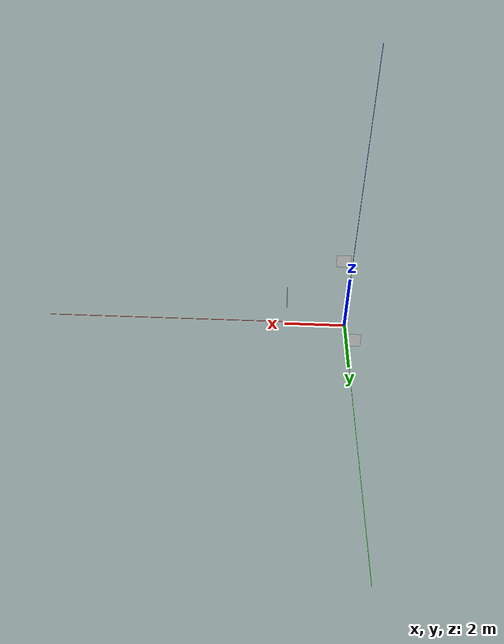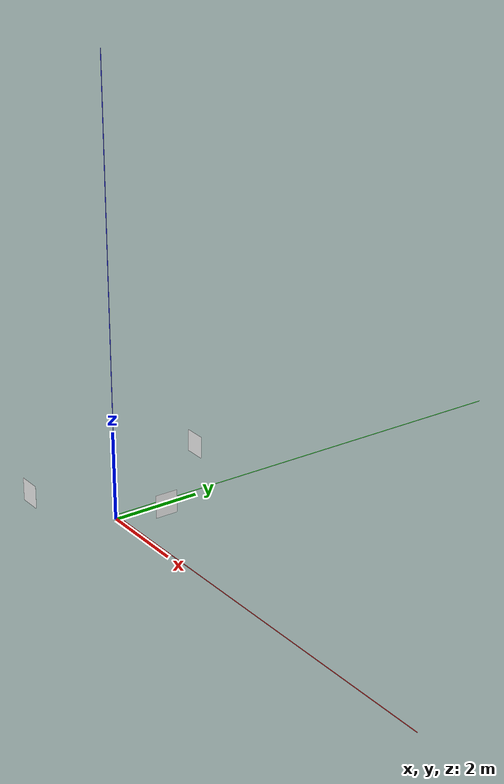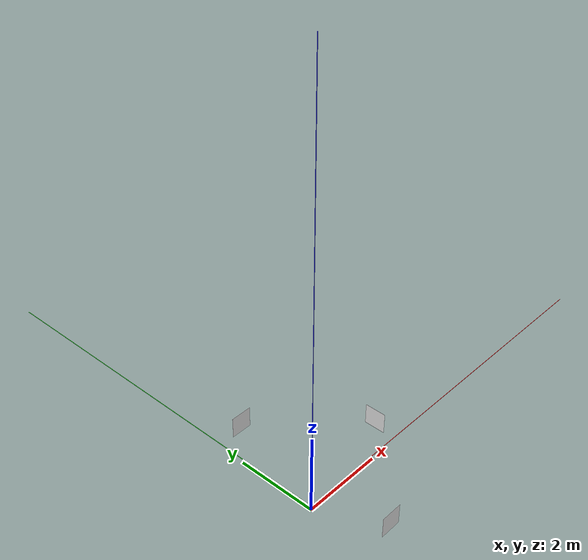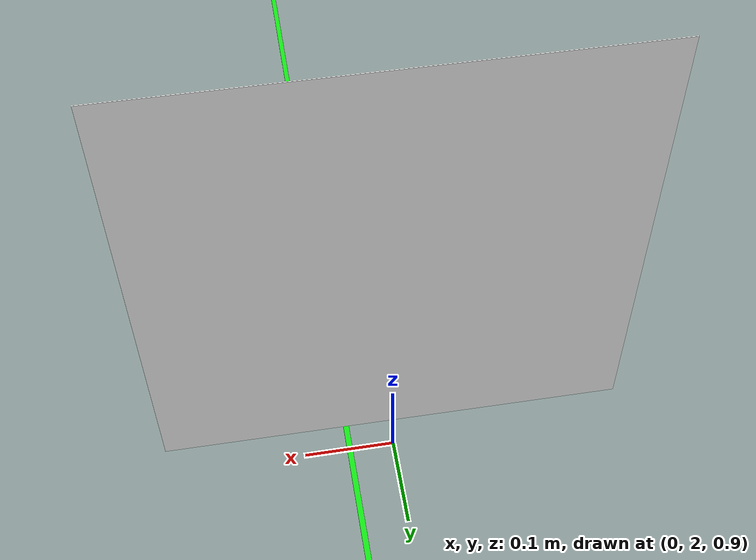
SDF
<sdf version="1.9">
 <world name="iris_tag_runway">
  <physics name="1ms" type="ignore">
   <max_step_size>0.001</max_step_size>
   <real_time_factor>1.0</real_time_factor>
  </physics>
  <plugin filename="gz-sim-physics-system" name="gz::sim::systems::Physics"/>
  <plugin filename="gz-sim-sensors-system" name="gz::sim::systems::Sensors">
   <render_engine>ogre2</render_engine>
  </plugin>
  <plugin filename="gz-sim-user-commands-system" name="gz::sim::systems::UserCommands"/>
  <plugin filename="gz-sim-scene-broadcaster-system" name="gz::sim::systems::SceneBroadcaster"/>
  <plugin filename="gz-sim-imu-system" name="gz::sim::systems::Imu"/>
  <plugin filename="gz-sim-navsat-system" name="gz::sim::systems::NavSat"/>
  <scene><ambient>1.0 1.0 1.0</ambient><background>0.8 0.8 0.8</background></scene>
  <spherical_coordinates>
   <latitude_deg>-35.363262</latitude_deg>
   <longitude_deg>149.165237</longitude_deg>
   <elevation>584</elevation>
   <heading_deg>0</heading_deg>
   <surface_model>EARTH_WGS84</surface_model>
  </spherical_coordinates>
  <light type="directional" name="sun">
   <pose>0 0 10 0 0 0</pose>
   <diffuse>0.8 0.8 0.8 1</diffuse>
   <specular>0.8 0.8 0.8 1</specular>
   <attenuation>
    <range>1000</range>
    <constant>0.9</constant>
    <linear>0.01</linear>
    <quadratic>0.001</quadratic>
   </attenuation>
   <direction>-0.5 0.1 -0.9</direction>
  </light>
  <model name="axes">
   <static>1</static>
   <link name="link">
    <visual name="r">
     <cast_shadows>0</cast_shadows>
     <pose>5 0 0.1 0 0 0</pose>
     <geometry><box><size>10 0.01 0.01</size></box></geometry>
     <material>
      <ambient>1 0 0 0.8</ambient>
      <diffuse>1 0 0 0.8</diffuse>
      <emissive>1 0 0 0.8</emissive>
      <specular>0.5 0.5 0.5 0.8</specular>
     </material>
    </visual>
    <visual name="g">
     <cast_shadows>0</cast_shadows>
     <pose>0 5 0.1 0 0 0</pose>
     <geometry><box><size>0.01 10 0.01</size></box></geometry>
     <material>
      <ambient>0 1 0 0.8</ambient>
      <diffuse>0 1 0 0.8</diffuse>
      <emissive>0 1 0 0.8</emissive>
      <specular>0.5 0.5 0.5 0.8</specular>
     </material>
    </visual>
    <visual name="b">
     <cast_shadows>0</cast_shadows>
     <pose>0 0 5.1 0 0 0</pose>
     <geometry><box><size>0.01 0.01 10</size></box></geometry>
     <material>
      <ambient>0 0 1 0.8</ambient>
      <diffuse>0 0 1 0.8</diffuse>
      <emissive>0 0 1 0.8</emissive>
      <specular>0.5 0.5 0.5 0.8</specular>
     </material>
    </visual>
    <sensor name="navsat_sensor" type="navsat"><always_on>1</always_on><update_rate>1</update_rate></sensor>
   </link>
  </model>
  <include>
   <uri>model://apriltag_id0</uri>
   <name>tag0</name>
   <pose>0 2 1.2 1.5708 1.5708 0</pose>
   <static>true</static>
  </include>
  <include>
   <uri>model://apriltag_id1</uri>
   <name>tag1</name>
   <pose>0 -2 1.2 -1.5708 1.5708 0</pose>
   <static>true</static>
  </include>
  <include>
   <uri>model://apriltag_id2</uri>
   <name>tag2</name>
   <pose>2 0 1.2 0 1.5708 0</pose>
   <static>true</static>
  </include>
 </world>
</sdf>

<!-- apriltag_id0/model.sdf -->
<sdf version="1.6">
  <model name="apriltag_id0">
    <static>true</static>

    <link name="link">
      <visual name="visual">
        <geometry>
          <box>
            <size>0.5 0.5 0.001</size> </box>
        </geometry>
        <material>
  		<diffuse>1 1 1 1</diffuse>
  		<specular>0.4 0.4 0.4 1</specular>
  	<pbr>
    	<metal>
      		<albedo_map>model://apriltag_id0/materials/textures/tag_id0.png</albedo_map>
    	</metal>
  	</pbr>
	</material>
      </visual>
      <collision name="collision">
        <geometry>
          <box>
            <size>0.5 0.5 0.001</size>
          </box>
        </geometry>
      </collision>
    </link>
  </model>
</sdf>

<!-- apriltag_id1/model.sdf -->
<sdf version="1.6">
  <model name="apriltag_id1">
    <static>true</static>
    <link name="link">
      <visual name="visual">
        <geometry>
          <box>
            <size>0.5 0.5 0.001</size> </box>
        </geometry>
        <material>
  		<diffuse>1 1 1 1</diffuse>
  		<specular>0.4 0.4 0.4 1</specular>
  	<pbr>
    	<metal>
      		<albedo_map>model://apriltag_id1/materials/textures/apriltag_id1.png</albedo_map>
    	</metal>
  	</pbr>
	</material>
      </visual>
      <collision name="collision">
        <geometry>
          <box>
            <size>0.5 0.5 0.001</size>
          </box>
        </geometry>
      </collision>
    </link>
  </model>
</sdf>

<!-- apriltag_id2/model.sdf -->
<sdf version="1.6">
  <model name="apriltag_id2">
    <static>true</static>
    <link name="link">
      <visual name="visual">
        <geometry>
          <box>
            <size>0.5 0.5 0.001</size> </box>
        </geometry>
        <material>
  		<diffuse>1 1 1 1</diffuse>
  		<specular>0.4 0.4 0.4 1</specular>
  	<pbr>
    	<metal>
      		<albedo_map>model://apriltag_id2/materials/textures/apriltag_id2.png</albedo_map>
    	</metal>
  	</pbr>
	</material>
      </visual>
      <collision name="collision">
        <geometry>
          <box>
            <size>0.5 0.5 0.001</size>
          </box>
        </geometry>
      </collision>
    </link>
  </model>
</sdf>
